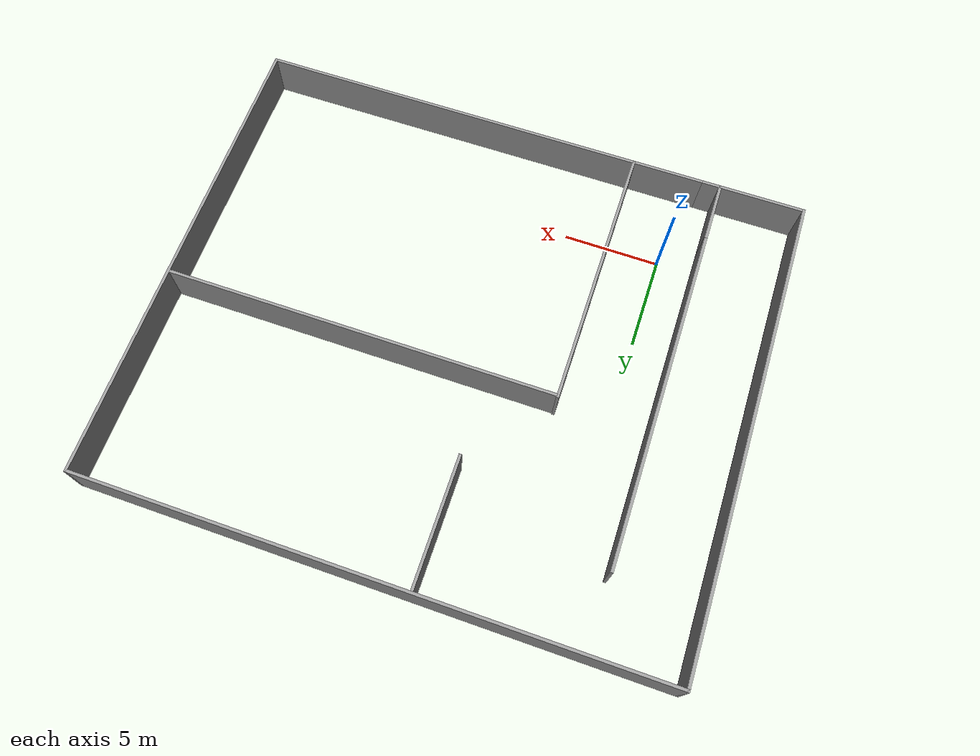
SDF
<?xml version='1.0'?>
<sdf version='1.7'>
  <model name='room'>
    <pose>8.535 8.39 0 0 -0 0</pose>
    <link name='Wall_0'>
      <collision name='Wall_0_Collision'>
        <geometry>
          <box>
            <size>5.5 0.15 2.5</size>
          </box>
        </geometry>
        <pose>0 0 1.25 0 -0 0</pose>
      </collision>
      <visual name='Wall_0_Visual'>
        <pose>0 0 1.25 0 -0 0</pose>
        <geometry>
          <box>
            <size>5.5 0.15 2.5</size>
          </box>
        </geometry>
        <material>
          <script>
            <uri>file://media/materials/scripts/gazebo.material</uri>
            <name>Gazebo/Grey</name>
          </script>
          <ambient>1 1 1 1</ambient>
        </material>
        <meta>
          <layer>0</layer>
        </meta>
      </visual>
      <pose>-12.25 -12.55 0 0 -0 3.14159</pose>
    </link>
    <link name='Wall_1'>
      <collision name='Wall_1_Collision'>
        <geometry>
          <box>
            <size>25.25 0.15 2.5</size>
          </box>
        </geometry>
        <pose>0 0 1.25 0 -0 0</pose>
      </collision>
      <visual name='Wall_1_Visual'>
        <pose>0 0 1.25 0 -0 0</pose>
        <geometry>
          <box>
            <size>25.25 0.15 2.5</size>
          </box>
        </geometry>
        <material>
          <script>
            <uri>file://media/materials/scripts/gazebo.material</uri>
            <name>Gazebo/Grey</name>
          </script>
          <ambient>1 1 1 1</ambient>
        </material>
        <meta>
          <layer>0</layer>
        </meta>
      </visual>
      <pose>-14.925 -0 0 0 -0 1.5708</pose>
    </link>
    <link name='Wall_11'>
      <collision name='Wall_11_Collision'>
        <geometry>
          <box>
            <size>3.25 0.15 2.5</size>
          </box>
        </geometry>
        <pose>0 0 1.25 0 -0 0</pose>
      </collision>
      <visual name='Wall_11_Visual'>
        <pose>0 0 1.25 0 -0 0</pose>
        <geometry>
          <box>
            <size>3.25 0.15 2.5</size>
          </box>
        </geometry>
        <material>
          <script>
            <uri>file://media/materials/scripts/gazebo.material</uri>
            <name>Gazebo/Grey</name>
          </script>
          <ambient>1 1 1 1</ambient>
        </material>
        <meta>
          <layer>0</layer>
        </meta>
      </visual>
      <pose>-10.4706 -10.9379 0 0 -0 -1.5708</pose>
    </link>
    <link name='Wall_13'>
      <collision name='Wall_13_Collision'>
        <geometry>
          <box>
            <size>14.1749 0.15 2.5</size>
          </box>
        </geometry>
        <pose>0 0 1.25 0 -0 0</pose>
      </collision>
      <visual name='Wall_13_Visual'>
        <pose>0 0 1.25 0 -0 0</pose>
        <geometry>
          <box>
            <size>14.1749 0.15 2.5</size>
          </box>
        </geometry>
        <material>
          <script>
            <uri>file://media/materials/scripts/gazebo.material</uri>
            <name>Gazebo/Grey</name>
          </script>
          <ambient>1 1 1 1</ambient>
        </material>
        <meta>
          <layer>0</layer>
        </meta>
      </visual>
      <pose>-5.75372 -5.50951 0 0 -0 1.5708</pose>
    </link>
    <link name='Wall_14'>
      <collision name='Wall_14_Collision'>
        <geometry>
          <box>
            <size>20.75 0.15 2.5</size>
          </box>
        </geometry>
        <pose>0 0 1.25 0 -0 0</pose>
      </collision>
      <visual name='Wall_14_Visual'>
        <pose>0 0 1.25 0 -0 0</pose>
        <geometry>
          <box>
            <size>20.75 0.15 2.5</size>
          </box>
        </geometry>
        <material>
          <script>
            <uri>file://media/materials/scripts/gazebo.material</uri>
            <name>Gazebo/Grey</name>
          </script>
          <ambient>1 1 1 1</ambient>
        </material>
        <meta>
          <layer>0</layer>
        </meta>
      </visual>
      <pose>4.54628 1.45639 0 0 -0 0</pose>
    </link>
    <link name='Wall_16'>
      <collision name='Wall_16_Collision'>
        <geometry>
          <box>
            <size>6.75 0.15 2.5</size>
          </box>
        </geometry>
        <pose>0 0 1.25 0 -0 0</pose>
      </collision>
      <visual name='Wall_16_Visual'>
        <pose>0 0 1.25 0 -0 0</pose>
        <geometry>
          <box>
            <size>6.75 0.15 2.5</size>
          </box>
        </geometry>
        <material>
          <script>
            <uri>file://media/materials/scripts/gazebo.material</uri>
            <name>Gazebo/Grey</name>
          </script>
          <ambient>1 1 1 1</ambient>
        </material>
        <meta>
          <layer>0</layer>
        </meta>
      </visual>
      <pose>-2.26133 9.14643 0 0 -0 1.5708</pose>
    </link>
    <link name='Wall_2'>
      <collision name='Wall_2_Collision'>
        <geometry>
          <box>
            <size>30 0.15 2.5</size>
          </box>
        </geometry>
        <pose>0 0 1.25 0 -0 0</pose>
      </collision>
      <visual name='Wall_2_Visual'>
        <pose>0 0 1.25 0 -0 0</pose>
        <geometry>
          <box>
            <size>30 0.15 2.5</size>
          </box>
        </geometry>
        <material>
          <script>
            <uri>file://media/materials/scripts/gazebo.material</uri>
            <name>Gazebo/Grey</name>
          </script>
          <ambient>1 1 1 1</ambient>
        </material>
        <meta>
          <layer>0</layer>
        </meta>
      </visual>
      <pose>1e-06 12.55 0 0 -0 0</pose>
    </link>
    <link name='Wall_3'>
      <collision name='Wall_3_Collision'>
        <geometry>
          <box>
            <size>25.25 0.15 2.5</size>
          </box>
        </geometry>
        <pose>0 0 1.25 0 -0 0</pose>
      </collision>
      <visual name='Wall_3_Visual'>
        <pose>0 0 1.25 0 -0 0</pose>
        <geometry>
          <box>
            <size>25.25 0.15 2.5</size>
          </box>
        </geometry>
        <material>
          <script>
            <uri>file://media/materials/scripts/gazebo.material</uri>
            <name>Gazebo/Grey</name>
          </script>
          <ambient>1 1 1 1</ambient>
        </material>
        <meta>
          <layer>0</layer>
        </meta>
      </visual>
      <pose>14.925 -0 0 0 -0 -1.5708</pose>
    </link>
    <link name='Wall_4'>
      <collision name='Wall_4_Collision'>
        <geometry>
          <box>
            <size>24.5 0.15 2.5</size>
          </box>
        </geometry>
        <pose>0 0 1.25 0 -0 0</pose>
      </collision>
      <visual name='Wall_4_Visual'>
        <pose>0 0 1.25 0 -0 0</pose>
        <geometry>
          <box>
            <size>24.5 0.15 2.5</size>
          </box>
        </geometry>
        <material>
          <script>
            <uri>file://media/materials/scripts/gazebo.material</uri>
            <name>Gazebo/Grey</name>
          </script>
          <ambient>1 1 1 1</ambient>
        </material>
        <meta>
          <layer>0</layer>
        </meta>
      </visual>
      <pose>2.75 -12.55 0 0 -0 3.14159</pose>
    </link>
    <link name='Wall_9'>
      <collision name='Wall_9_Collision'>
        <geometry>
          <box>
            <size>18.25 0.15 2.5</size>
          </box>
        </geometry>
        <pose>0 0 1.25 0 -0 0</pose>
      </collision>
      <visual name='Wall_9_Visual'>
        <pose>0 0 1.25 0 -0 0</pose>
        <geometry>
          <box>
            <size>18.25 0.15 2.5</size>
          </box>
        </geometry>
        <material>
          <script>
            <uri>file://media/materials/scripts/gazebo.material</uri>
            <name>Gazebo/Grey</name>
          </script>
          <ambient>1 1 1 1</ambient>
        </material>
        <meta>
          <layer>0</layer>
        </meta>
      </visual>
      <pose>-10.4706 -0.337946 0 0 -0 1.5708</pose>
    </link>
    <static>1</static>
  </model>
</sdf>
